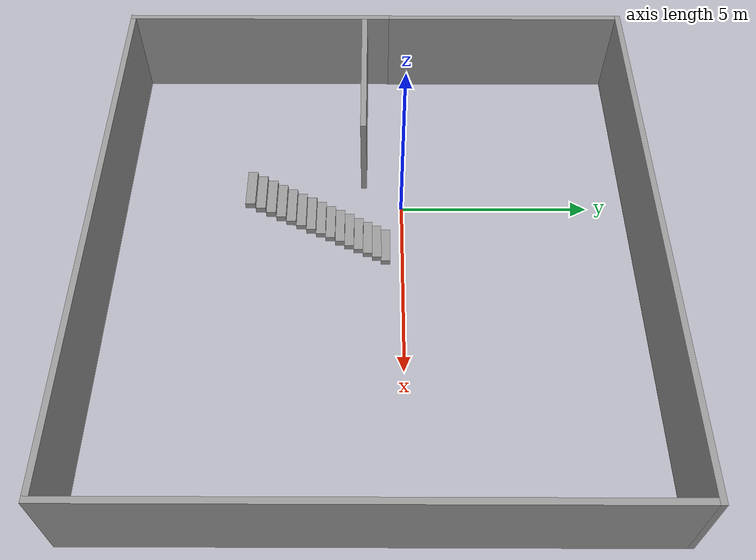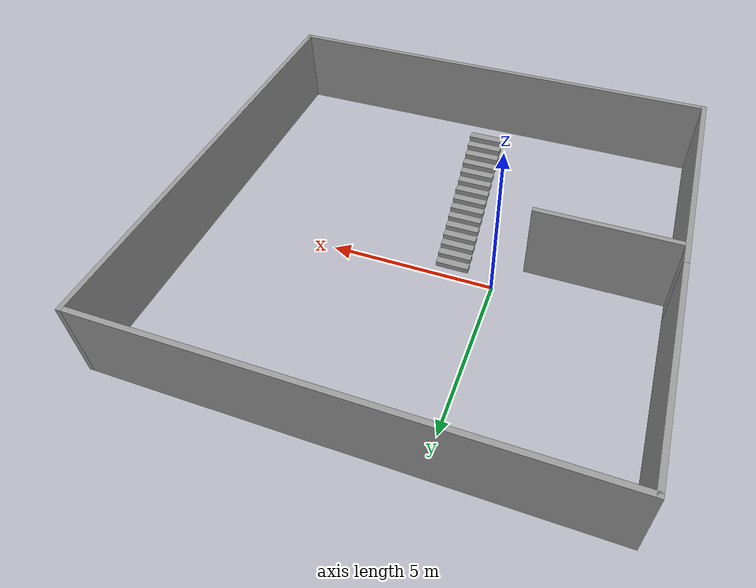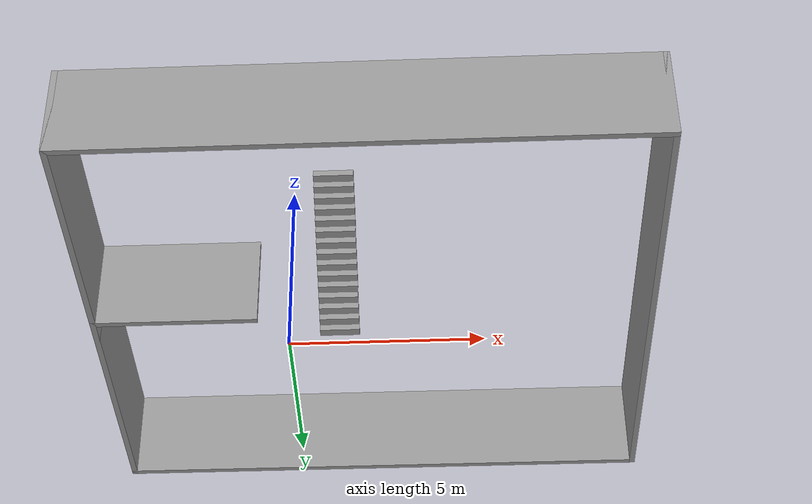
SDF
<?xml version='1.0'?>
<sdf version='1.7'>
  <model name='stairs'>
    <pose>2.15 -0.72 0 0 -0 0</pose>
    <link name='Stairs_0'>
      <visual name='Stairs_0_Visual_0'>
        <pose>-0.82 0.283334 0.083333 0 -0 0</pose>
        <geometry>
          <box>
            <size>1 0.233333 0.166667</size>
          </box>
        </geometry>
        <material>
          <script>
            <uri>file://media/materials/scripts/gazebo.material</uri>
            <name>Gazebo/Grey</name>
          </script>
          <ambient>1 1 1 1</ambient>
        </material>
        <meta>
          <layer>0</layer>
        </meta>
      </visual>
      <collision name='Stairs_0_Collision_0'>
        <geometry>
          <box>
            <size>1 0.233333 0.166667</size>
          </box>
        </geometry>
        <pose>-0.82 0.283334 0.083333 0 -0 0</pose>
      </collision>
      <visual name='Stairs_0_Visual_1'>
        <pose>-0.82 0.05 0.25 0 -0 0</pose>
        <geometry>
          <box>
            <size>1 0.233333 0.166667</size>
          </box>
        </geometry>
        <material>
          <script>
            <uri>file://media/materials/scripts/gazebo.material</uri>
            <name>Gazebo/Grey</name>
          </script>
          <ambient>1 1 1 1</ambient>
        </material>
        <meta>
          <layer>0</layer>
        </meta>
      </visual>
      <collision name='Stairs_0_Collision_1'>
        <geometry>
          <box>
            <size>1 0.233333 0.166667</size>
          </box>
        </geometry>
        <pose>-0.82 0.05 0.25 0 -0 0</pose>
      </collision>
      <visual name='Stairs_0_Visual_2'>
        <pose>-0.82 -0.183333 0.416667 0 -0 0</pose>
        <geometry>
          <box>
            <size>1 0.233333 0.166667</size>
          </box>
        </geometry>
        <material>
          <script>
            <uri>file://media/materials/scripts/gazebo.material</uri>
            <name>Gazebo/Grey</name>
          </script>
          <ambient>1 1 1 1</ambient>
        </material>
        <meta>
          <layer>0</layer>
        </meta>
      </visual>
      <collision name='Stairs_0_Collision_2'>
        <geometry>
          <box>
            <size>1 0.233333 0.166667</size>
          </box>
        </geometry>
        <pose>-0.82 -0.183333 0.416667 0 -0 0</pose>
      </collision>
      <visual name='Stairs_0_Visual_3'>
        <pose>-0.82 -0.416666 0.583333 0 -0 0</pose>
        <geometry>
          <box>
            <size>1 0.233333 0.166667</size>
          </box>
        </geometry>
        <material>
          <script>
            <uri>file://media/materials/scripts/gazebo.material</uri>
            <name>Gazebo/Grey</name>
          </script>
          <ambient>1 1 1 1</ambient>
        </material>
        <meta>
          <layer>0</layer>
        </meta>
      </visual>
      <collision name='Stairs_0_Collision_3'>
        <geometry>
          <box>
            <size>1 0.233333 0.166667</size>
          </box>
        </geometry>
        <pose>-0.82 -0.416666 0.583333 0 -0 0</pose>
      </collision>
      <visual name='Stairs_0_Visual_4'>
        <pose>-0.82 -0.65 0.75 0 -0 0</pose>
        <geometry>
          <box>
            <size>1 0.233333 0.166667</size>
          </box>
        </geometry>
        <material>
          <script>
            <uri>file://media/materials/scripts/gazebo.material</uri>
            <name>Gazebo/Grey</name>
          </script>
          <ambient>1 1 1 1</ambient>
        </material>
        <meta>
          <layer>0</layer>
        </meta>
      </visual>
      <collision name='Stairs_0_Collision_4'>
        <geometry>
          <box>
            <size>1 0.233333 0.166667</size>
          </box>
        </geometry>
        <pose>-0.82 -0.65 0.75 0 -0 0</pose>
      </collision>
      <visual name='Stairs_0_Visual_5'>
        <pose>-0.82 -0.883333 0.916667 0 -0 0</pose>
        <geometry>
          <box>
            <size>1 0.233333 0.166667</size>
          </box>
        </geometry>
        <material>
          <script>
            <uri>file://media/materials/scripts/gazebo.material</uri>
            <name>Gazebo/Grey</name>
          </script>
          <ambient>1 1 1 1</ambient>
        </material>
        <meta>
          <layer>0</layer>
        </meta>
      </visual>
      <collision name='Stairs_0_Collision_5'>
        <geometry>
          <box>
            <size>1 0.233333 0.166667</size>
          </box>
        </geometry>
        <pose>-0.82 -0.883333 0.916667 0 -0 0</pose>
      </collision>
      <visual name='Stairs_0_Visual_6'>
        <pose>-0.82 -1.11667 1.08333 0 -0 0</pose>
        <geometry>
          <box>
            <size>1 0.233333 0.166667</size>
          </box>
        </geometry>
        <material>
          <script>
            <uri>file://media/materials/scripts/gazebo.material</uri>
            <name>Gazebo/Grey</name>
          </script>
          <ambient>1 1 1 1</ambient>
        </material>
        <meta>
          <layer>0</layer>
        </meta>
      </visual>
      <collision name='Stairs_0_Collision_6'>
        <geometry>
          <box>
            <size>1 0.233333 0.166667</size>
          </box>
        </geometry>
        <pose>-0.82 -1.11667 1.08333 0 -0 0</pose>
      </collision>
      <visual name='Stairs_0_Visual_7'>
        <pose>-0.82 -1.35 1.25 0 -0 0</pose>
        <geometry>
          <box>
            <size>1 0.233333 0.166667</size>
          </box>
        </geometry>
        <material>
          <script>
            <uri>file://media/materials/scripts/gazebo.material</uri>
            <name>Gazebo/Grey</name>
          </script>
          <ambient>1 1 1 1</ambient>
        </material>
        <meta>
          <layer>0</layer>
        </meta>
      </visual>
      <collision name='Stairs_0_Collision_7'>
        <geometry>
          <box>
            <size>1 0.233333 0.166667</size>
          </box>
        </geometry>
        <pose>-0.82 -1.35 1.25 0 -0 0</pose>
      </collision>
      <visual name='Stairs_0_Visual_8'>
        <pose>-0.82 -1.58333 1.41667 0 -0 0</pose>
        <geometry>
          <box>
            <size>1 0.233333 0.166667</size>
          </box>
        </geometry>
        <material>
          <script>
            <uri>file://media/materials/scripts/gazebo.material</uri>
            <name>Gazebo/Grey</name>
          </script>
          <ambient>1 1 1 1</ambient>
        </material>
        <meta>
          <layer>0</layer>
        </meta>
      </visual>
      <collision name='Stairs_0_Collision_8'>
        <geometry>
          <box>
            <size>1 0.233333 0.166667</size>
          </box>
        </geometry>
        <pose>-0.82 -1.58333 1.41667 0 -0 0</pose>
      </collision>
      <visual name='Stairs_0_Visual_9'>
        <pose>-0.82 -1.81667 1.58333 0 -0 0</pose>
        <geometry>
          <box>
            <size>1 0.233333 0.166667</size>
          </box>
        </geometry>
        <material>
          <script>
            <uri>file://media/materials/scripts/gazebo.material</uri>
            <name>Gazebo/Grey</name>
          </script>
          <ambient>1 1 1 1</ambient>
        </material>
        <meta>
          <layer>0</layer>
        </meta>
      </visual>
      <collision name='Stairs_0_Collision_9'>
        <geometry>
          <box>
            <size>1 0.233333 0.166667</size>
          </box>
        </geometry>
        <pose>-0.82 -1.81667 1.58333 0 -0 0</pose>
      </collision>
      <visual name='Stairs_0_Visual_10'>
        <pose>-0.82 -2.05 1.75 0 -0 0</pose>
        <geometry>
          <box>
            <size>1 0.233333 0.166667</size>
          </box>
        </geometry>
        <material>
          <script>
            <uri>file://media/materials/scripts/gazebo.material</uri>
            <name>Gazebo/Grey</name>
          </script>
          <ambient>1 1 1 1</ambient>
        </material>
        <meta>
          <layer>0</layer>
        </meta>
      </visual>
      <collision name='Stairs_0_Collision_10'>
        <geometry>
          <box>
            <size>1 0.233333 0.166667</size>
          </box>
        </geometry>
        <pose>-0.82 -2.05 1.75 0 -0 0</pose>
      </collision>
      <visual name='Stairs_0_Visual_11'>
        <pose>-0.82 -2.28333 1.91667 0 -0 0</pose>
        <geometry>
          <box>
            <size>1 0.233333 0.166667</size>
          </box>
        </geometry>
        <material>
          <script>
            <uri>file://media/materials/scripts/gazebo.material</uri>
            <name>Gazebo/Grey</name>
          </script>
          <ambient>1 1 1 1</ambient>
        </material>
        <meta>
          <layer>0</layer>
        </meta>
      </visual>
      <collision name='Stairs_0_Collision_11'>
        <geometry>
          <box>
            <size>1 0.233333 0.166667</size>
          </box>
        </geometry>
        <pose>-0.82 -2.28333 1.91667 0 -0 0</pose>
      </collision>
      <visual name='Stairs_0_Visual_12'>
        <pose>-0.82 -2.51667 2.08333 0 -0 0</pose>
        <geometry>
          <box>
            <size>1 0.233333 0.166667</size>
          </box>
        </geometry>
        <material>
          <script>
            <uri>file://media/materials/scripts/gazebo.material</uri>
            <name>Gazebo/Grey</name>
          </script>
          <ambient>1 1 1 1</ambient>
        </material>
        <meta>
          <layer>0</layer>
        </meta>
      </visual>
      <collision name='Stairs_0_Collision_12'>
        <geometry>
          <box>
            <size>1 0.233333 0.166667</size>
          </box>
        </geometry>
        <pose>-0.82 -2.51667 2.08333 0 -0 0</pose>
      </collision>
      <visual name='Stairs_0_Visual_13'>
        <pose>-0.82 -2.75 2.25 0 -0 0</pose>
        <geometry>
          <box>
            <size>1 0.233333 0.166667</size>
          </box>
        </geometry>
        <material>
          <script>
            <uri>file://media/materials/scripts/gazebo.material</uri>
            <name>Gazebo/Grey</name>
          </script>
          <ambient>1 1 1 1</ambient>
        </material>
        <meta>
          <layer>0</layer>
        </meta>
      </visual>
      <collision name='Stairs_0_Collision_13'>
        <geometry>
          <box>
            <size>1 0.233333 0.166667</size>
          </box>
        </geometry>
        <pose>-0.82 -2.75 2.25 0 -0 0</pose>
      </collision>
      <visual name='Stairs_0_Visual_14'>
        <pose>-0.82 -2.98333 2.41667 0 -0 0</pose>
        <geometry>
          <box>
            <size>1 0.233333 0.166667</size>
          </box>
        </geometry>
        <material>
          <script>
            <uri>file://media/materials/scripts/gazebo.material</uri>
            <name>Gazebo/Grey</name>
          </script>
          <ambient>1 1 1 1</ambient>
        </material>
        <meta>
          <layer>0</layer>
        </meta>
      </visual>
      <collision name='Stairs_0_Collision_14'>
        <geometry>
          <box>
            <size>1 0.233333 0.166667</size>
          </box>
        </geometry>
        <pose>-0.82 -2.98333 2.41667 0 -0 0</pose>
      </collision>
    </link>
    <link name='Wall_0'>
      <collision name='Wall_0_Collision'>
        <geometry>
          <box>
            <size>7.25 0.15 2.5</size>
          </box>
        </geometry>
        <pose>0 0 1.25 0 -0 0</pose>
      </collision>
      <visual name='Wall_0_Visual'>
        <pose>0 0 1.25 0 -0 0</pose>
        <geometry>
          <box>
            <size>7.25 0.15 2.5</size>
          </box>
        </geometry>
        <material>
          <script>
            <uri>file://media/materials/scripts/gazebo.material</uri>
            <name>Gazebo/Grey</name>
          </script>
          <ambient>1 1 1 1</ambient>
        </material>
        <meta>
          <layer>0</layer>
        </meta>
      </visual>
      <pose>-7.05 -3.25 0 0 -0 -1.5708</pose>
    </link>
    <link name='Wall_1'>
      <collision name='Wall_1_Collision'>
        <geometry>
          <box>
            <size>14.25 0.15 2.5</size>
          </box>
        </geometry>
        <pose>0 0 1.25 0 -0 0</pose>
      </collision>
      <visual name='Wall_1_Visual'>
        <pose>0 0 1.25 0 -0 0</pose>
        <geometry>
          <box>
            <size>14.25 0.15 2.5</size>
          </box>
        </geometry>
        <material>
          <script>
            <uri>file://media/materials/scripts/gazebo.material</uri>
            <name>Gazebo/Grey</name>
          </script>
          <ambient>1 1 1 1</ambient>
        </material>
        <meta>
          <layer>0</layer>
        </meta>
      </visual>
      <pose>0 -6.8 0 0 -0 0</pose>
    </link>
    <link name='Wall_2'>
      <collision name='Wall_2_Collision'>
        <geometry>
          <box>
            <size>13.75 0.15 2.5</size>
          </box>
        </geometry>
        <pose>0 0 1.25 0 -0 0</pose>
      </collision>
      <visual name='Wall_2_Visual'>
        <pose>0 0 1.25 0 -0 0</pose>
        <geometry>
          <box>
            <size>13.75 0.15 2.5</size>
          </box>
        </geometry>
        <material>
          <script>
            <uri>file://media/materials/scripts/gazebo.material</uri>
            <name>Gazebo/Grey</name>
          </script>
          <ambient>1 1 1 1</ambient>
        </material>
        <meta>
          <layer>0</layer>
        </meta>
      </visual>
      <pose>7.05 0 0 0 -0 1.5708</pose>
    </link>
    <link name='Wall_3'>
      <collision name='Wall_3_Collision'>
        <geometry>
          <box>
            <size>14.25 0.15 2.5</size>
          </box>
        </geometry>
        <pose>0 0 1.25 0 -0 0</pose>
      </collision>
      <visual name='Wall_3_Visual'>
        <pose>0 0 1.25 0 -0 0</pose>
        <geometry>
          <box>
            <size>14.25 0.15 2.5</size>
          </box>
        </geometry>
        <material>
          <script>
            <uri>file://media/materials/scripts/gazebo.material</uri>
            <name>Gazebo/Grey</name>
          </script>
          <ambient>1 1 1 1</ambient>
        </material>
        <meta>
          <layer>0</layer>
        </meta>
      </visual>
      <pose>0 6.8 0 0 -0 3.14159</pose>
    </link>
    <link name='Wall_4'>
      <collision name='Wall_4_Collision'>
        <geometry>
          <box>
            <size>7.25 0.15 2.5</size>
          </box>
        </geometry>
        <pose>0 0 1.25 0 -0 0</pose>
      </collision>
      <visual name='Wall_4_Visual'>
        <pose>0 0 1.25 0 -0 0</pose>
        <geometry>
          <box>
            <size>7.25 0.15 2.5</size>
          </box>
        </geometry>
        <material>
          <script>
            <uri>file://media/materials/scripts/gazebo.material</uri>
            <name>Gazebo/Grey</name>
          </script>
          <ambient>1 1 1 1</ambient>
        </material>
        <meta>
          <layer>0</layer>
        </meta>
      </visual>
      <pose>-7.05 3.25 0 0 -0 -1.5708</pose>
    </link>
    <link name='Wall_5'>
      <collision name='Wall_5_Collision'>
        <geometry>
          <box>
            <size>4.25 0.15 2.5</size>
          </box>
        </geometry>
        <pose>0 0 1.25 0 -0 0</pose>
      </collision>
      <visual name='Wall_5_Visual'>
        <pose>0 0 1.25 0 -0 0</pose>
        <geometry>
          <box>
            <size>4.25 0.15 2.5</size>
          </box>
        </geometry>
        <material>
          <script>
            <uri>file://media/materials/scripts/gazebo.material</uri>
            <name>Gazebo/Grey</name>
          </script>
          <ambient>1 1 1 1</ambient>
        </material>
        <meta>
          <layer>0</layer>
        </meta>
      </visual>
      <pose>-5 -0.3 0 0 -0 0</pose>
    </link>
    <static>1</static>
  </model>
</sdf>
